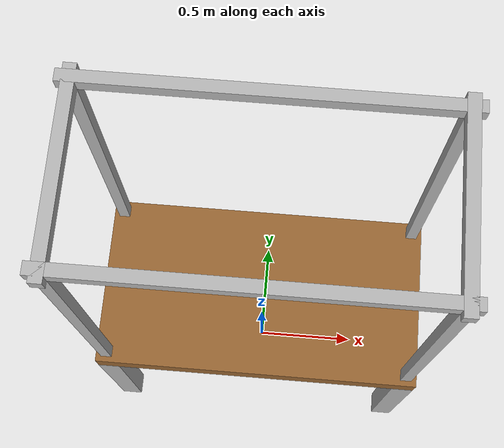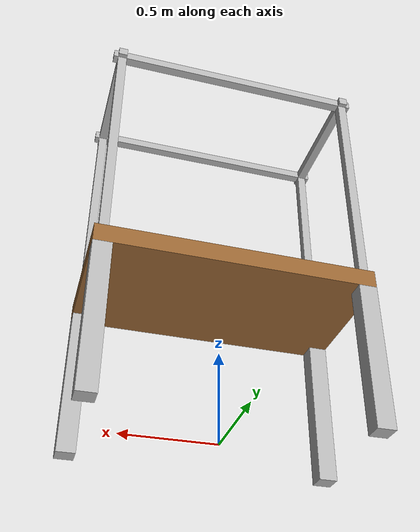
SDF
<?xml version="1.0" ?>
<sdf version="1.6">
  <model name="mesa_con_marco">
    <static>true</static>
    <link name="table_link">

      <!-- Superficie de la mesa -->
      <visual name="table_top">
        <geometry>
          <box>
            <!-- Ajustar dimensiones: Largo x Ancho x Grosor -->
            <size>1.5 0.8 0.1</size>
          </box>
        </geometry>
        <material>
          <ambient>0.6 0.4 0.2 1</ambient>
          <diffuse>0.6 0.4 0.2 1</diffuse>
        </material>
        <!-- Ajustar la altura de la superficie de la mesa -->
        <pose>0 0 0.85 0 0 0</pose>
      </visual>

      <!-- Pata 1 -->
      <visual name="leg1">
        <geometry>
          <box>
            <!-- Ajustar grosor y altura de las patas -->
            <size>0.1 0.1 0.8</size>
          </box>
        </geometry>
        <pose>-0.7 -0.35 0.4 0 0 0</pose>
      </visual>

      <!-- Pata 2 -->
      <visual name="leg2">
        <geometry>
          <box>
            <size>0.1 0.1 0.8</size>
          </box>
        </geometry>
        <pose>0.7 -0.35 0.4 0 0 0</pose>
      </visual>

      <!-- Pata 3 -->
      <visual name="leg3">
        <geometry>
          <box>
            <size>0.1 0.1 0.8</size>
          </box>
        </geometry>
        <pose>-0.7 0.35 0.4 0 0 0</pose>
      </visual>

      <!-- Pata 4 -->
      <visual name="leg4">
        <geometry>
          <box>
            <size>0.1 0.1 0.8</size>
          </box>
        </geometry>
        <pose>0.7 0.35 0.4 0 0 0</pose>
      </visual>

      <!-- Marco vertical en las esquinas -->

      <!-- Columna 1 -->
      <visual name="columna1">
        <geometry>
          <box>
            <size>0.05 0.05 1.4</size>
          </box>
        </geometry>
        <pose>-0.7 -0.35 1.5 0 0 0</pose>
      </visual>

      <!-- Columna 2 -->
      <visual name="columna2">
        <geometry>
          <box>
            <size>0.05 0.05 1.4</size>
          </box>
        </geometry>
        <pose>0.7 -0.35 1.5 0 0 0</pose>
      </visual>

      <!-- Columna 3 -->
      <visual name="columna3">
        <geometry>
          <box>
            <size>0.05 0.05 1.4</size>
          </box>
        </geometry>
        <pose>-0.7 0.35 1.5 0 0 0</pose>
      </visual>

      <!-- Columna 4 -->
      <visual name="columna4">
        <geometry>
          <box>
            <size>0.05 0.05 1.4</size>
          </box>
        </geometry>
        <pose>0.7 0.35 1.5 0 0 0</pose>
      </visual>

      <!-- Vigas horizontales para conectar las columnas -->

      <!-- Viga frontal -->
      <visual name="viga_frontal">
        <geometry>
          <box>
            <size>1.5 0.05 0.05</size>
          </box>
        </geometry>
        <pose>0 0.35 2.2 0 0 0</pose>
      </visual>

      <!-- Viga trasera -->
      <visual name="viga_trasera">
        <geometry>
          <box>
            <size>1.5 0.05 0.05</size>
          </box>
        </geometry>
        <pose>0 -0.35 2.2 0 0 0</pose>
      </visual>

      <!-- Viga lateral izquierda -->
      <visual name="viga_izquierda">
        <geometry>
          <box>
            <size>0.05 0.8 0.05</size>
          </box>
        </geometry>
        <pose>-0.7 0 2.2 0 0 0</pose>
      </visual>

      <!-- Viga lateral derecha -->
      <visual name="viga_derecha">
        <geometry>
          <box>
            <size>0.05 0.8 0.05</size>
          </box>
        </geometry>
        <pose>0.7 0 2.2 0 0 0</pose>
      </visual>

    </link>
  </model>
</sdf>
